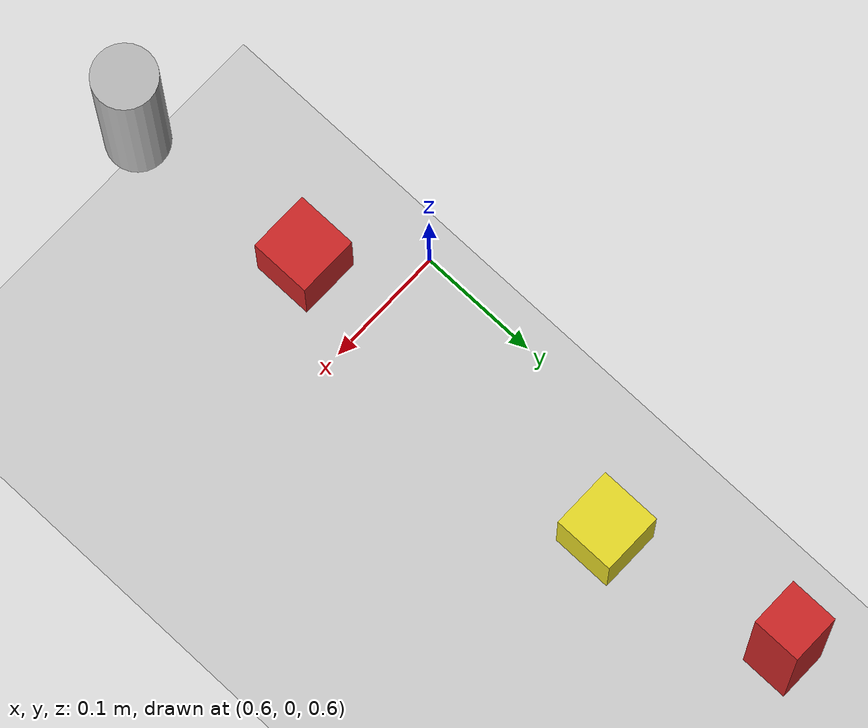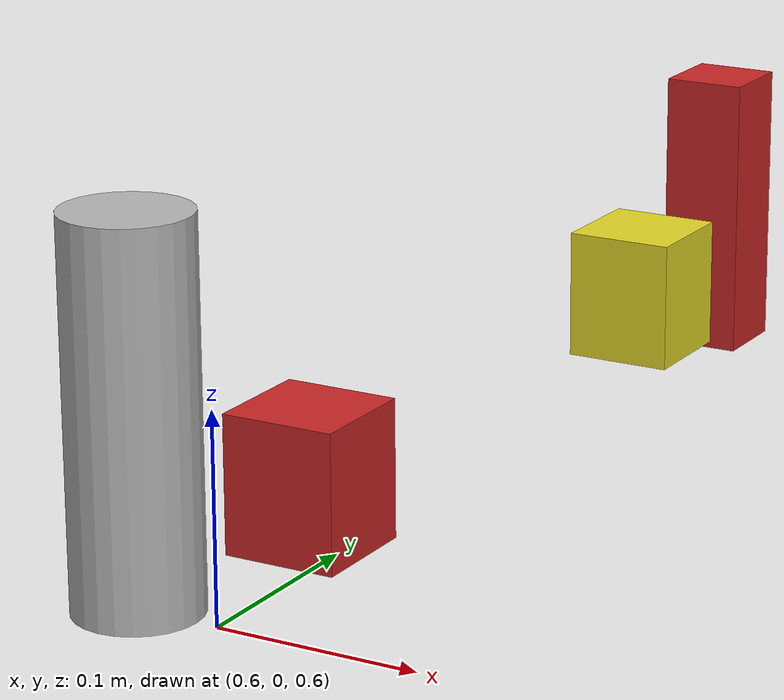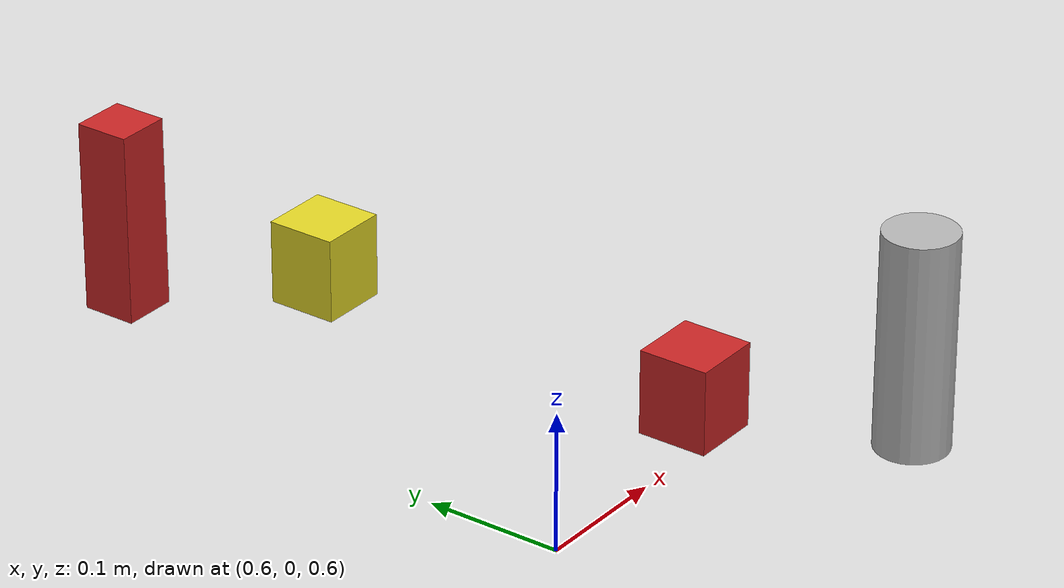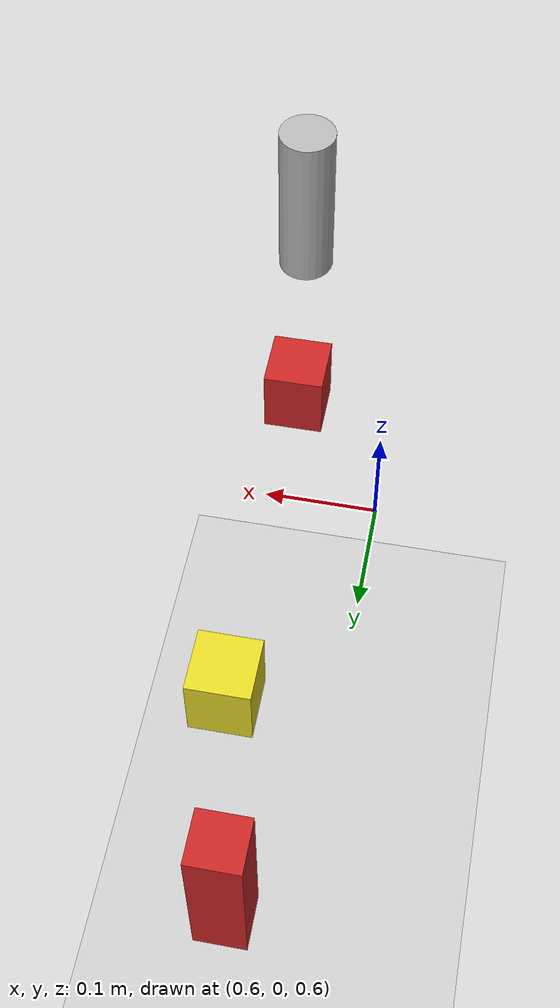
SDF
<sdf version="1.4">
 <world name="default">
  <physics type="ode">
   <gravity>0 0 -9.81</gravity>
   <ode>
    <solver><type>quick</type><iters>20</iters><sor>1.0</sor></solver>
    <constraints>
     <cfm>0.0</cfm>
     <erp>0.2</erp>
     <contact_max_correcting_vel>100.0</contact_max_correcting_vel>
     <contact_surface_layer>0.0</contact_surface_layer>
    </constraints>
   </ode>
   <real_time_update_rate>1000</real_time_update_rate>
   <max_step_size>0.001</max_step_size>
  </physics>
  <include><uri>model://sun</uri></include>
  <include><uri>model://ground_plane</uri></include>
  <include><uri>model://sprite</uri><name>sprite1</name><pose>0.7 -0.2 0.7 0 0 0</pose></include>
  <include><uri>model://red_cube</uri><name>red_cube1</name><pose>0.68 -0.05 0.7 0 0 0</pose></include>
  <include><uri>model://yellow_cube</uri><name>yellow_cube1</name><pose>0.68 0.25 0.7 0 0 0</pose></include>
  <include><uri>model://red_rectangle</uri><name>red_rectangle1</name><pose>0.65 0.4 0.7 0 0 0</pose></include>
 </world>
</sdf>

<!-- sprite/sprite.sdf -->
<sdf version="1.4">
  <model name="sprite">
    <static>0</static>
    <link name="sprite_link">
      <inertial>
        <mass>0.01</mass>
        <inertia>
          <ixx>0.000000</ixx>
          <ixy>0.000000</ixy>
          <ixz>0.000000</ixz>
          <iyy>0.000000</iyy>
          <iyz>0.000000</iyz>
          <izz>0.000000</izz>
        </inertia>
      </inertial>
      <collision name="collision">
        <pose>0 0 0.075 3.1416 0 0</pose>
        <geometry>
          <cylinder>
            <radius>0.025</radius>
            <length>0.15</length>
          </cylinder>
        </geometry>
        <surface>
          <bounce />
          <friction>
            <ode>
              <mu>100.0</mu>
              <mu2>100.0</mu2>
            </ode>
          </friction>
          <contact>
            <ode />
          </contact>
        </surface>
      </collision>
      <visual name="visual">
        <pose>0 0 0.075 3.1416 0 0</pose>
        <geometry>
          <cylinder>
            <radius>0.025</radius>
            <length>0.15</length>
          </cylinder>
        </geometry>
        <material>
          <script>
	      <uri>model://sprite/material/scripts</uri>
	      <uri>model://sprite/material/textures</uri>
              <name>Custom/sprite</name>
          </script>
        </material>
      </visual>
      <velocity_decay>
        <linear>0.000000</linear>
        <angular>0.000000</angular>
      </velocity_decay>
      <self_collide>0</self_collide>
      <kinematic>0</kinematic>
      <gravity>1</gravity>
    </link>
    <plugin name="p3d_base_controller" filename="libgazebo_ros_p3d.so">
        <!-- Link to which the plugin is attached -->
        <bodyName>sprite_link</bodyName>
        <!-- ROS topic name to publish the pose information -->
        <topicName>sprite</topicName>
        <!-- Frame name for the TF -->
        <frameName>world</frameName>
        <!-- Update rate in Hz -->
        <updateRate>30.0</updateRate>
        <!-- Gaussian noise magnitude -->
        <gaussianNoise>0.01</gaussianNoise>
    </plugin>
  </model>
</sdf>

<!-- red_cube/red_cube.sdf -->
<sdf version='1.4'>
  <model name="red_cube">
            <allow_auto_disable>0</allow_auto_disable>

      <static>0</static>
      <link name='red_cube_link'>
        <inertial>
          <mass>0.25</mass>
          <inertia>
            <ixx>0.000041667</ixx>
            <ixy>0.000000</ixy>
            <ixz>0.000000</ixz>
            <iyy>0.000041667</iyy>
            <iyz>0.000000</iyz>
            <izz>0.000041667</izz>
          </inertia>
        </inertial>
        <visual name='visual'>
          <geometry>
            <box>
              <size>0.050 0.050 0.060</size>
            </box>
          </geometry>
          <material>
            <script>
              <uri>file://media/materials/scripts/gazebo.material</uri>
              <name>Gazebo/Red</name>
            </script>
          </material>
        </visual>
        <collision name='collision'>
          <geometry>
            <box>
              <size>0.06 0.06 0.06</size>
            </box>
          </geometry>
          <surface>
            <friction>
              <ode>
                <mu>30.0</mu>
                <mu2>30.0</mu2>
              </ode>
            </friction>
            <contact>
              <ode>
                <kp>1000000.0</kp>
                <kd>100.0</kd>
                <max_vel>1.0</max_vel>
                <min_depth>0.0025</min_depth>
              </ode>
            </contact>
          </surface>
        </collision>
        <velocity_decay>
          <linear>0.000000</linear>
          <angular>0.000000</angular>
        </velocity_decay>
        <self_collide>0</self_collide>
        <kinematic>0</kinematic>
        <gravity>1</gravity>
      </link>
    <plugin name="p3d_base_controller" filename="libgazebo_ros_p3d.so">
        <!-- Link to which the plugin is attached -->
        <bodyName>red_cube_link</bodyName>
        <!-- ROS topic name to publish the pose information -->
        <topicName>red_cube</topicName>
        <!-- Frame name for the TF -->
        <frameName>world</frameName>
        <!-- Update rate in Hz -->
        <updateRate>30.0</updateRate>
        <!-- Gaussian noise magnitude -->
        <gaussianNoise>0.01</gaussianNoise>
    </plugin>
  </model>
</sdf>

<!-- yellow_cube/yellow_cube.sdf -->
<sdf version='1.4'>
  <model name="yellow_cube">
            <allow_auto_disable>0</allow_auto_disable>

      <static>0</static>
      <link name='yellow_cube_link'>
        <inertial>
          <mass>0.25</mass>
          <inertia>
            <ixx>0.000041667</ixx>
            <ixy>0.000000</ixy>
            <ixz>0.000000</ixz>
            <iyy>0.000041667</iyy>
            <iyz>0.000000</iyz>
            <izz>0.000041667</izz>
          </inertia>
        </inertial>
        <visual name='visual'>
          <geometry>
            <box>
              <size>0.050 0.050 0.060</size>
            </box>
          </geometry>
          <material>
            <script>
              <uri>file://media/materials/scripts/gazebo.material</uri>
              <name>Gazebo/Yellow</name>
            </script>
          </material>
        </visual>
        <collision name='collision'>
          <geometry>
            <box>
              <size>0.06 0.06 0.06</size>
            </box>
          </geometry>
          <surface>
            <friction>
              <ode>
                <mu>30.0</mu>
                <mu2>30.0</mu2>
              </ode>
            </friction>
            <contact>
              <ode>
                <kp>1000000.0</kp>
                <kd>100.0</kd>
                <max_vel>1.0</max_vel>
                <min_depth>0.0025</min_depth>
              </ode>
            </contact>
          </surface>
        </collision>
        <velocity_decay>
          <linear>0.000000</linear>
          <angular>0.000000</angular>
        </velocity_decay>
        <self_collide>0</self_collide>
        <kinematic>0</kinematic>
        <gravity>1</gravity>
      </link>
    <plugin name="p3d_base_controller" filename="libgazebo_ros_p3d.so">
        <!-- Link to which the plugin is attached -->
        <bodyName>yellow_cube_link</bodyName>
        <!-- ROS topic name to publish the pose information -->
        <topicName>yellow_cube</topicName>
        <!-- Frame name for the TF -->
        <frameName>world</frameName>
        <!-- Update rate in Hz -->
        <updateRate>30.0</updateRate>
        <!-- Gaussian noise magnitude -->
        <gaussianNoise>0.01</gaussianNoise>
    </plugin>
  </model>
</sdf>

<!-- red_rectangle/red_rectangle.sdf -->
<sdf version='1.4'>
  <model name="red_rectangle">
      <static>0</static>
      <link name='red_rectangle_link'>
        <inertial>
          <mass>0.25</mass>
          <inertia>
            <ixx>0.000041667</ixx>
            <ixy>0.000000</ixy>
            <ixz>0.000000</ixz>
            <iyy>0.000041667</iyy>
            <iyz>0.000000</iyz>
            <izz>0.000041667</izz>
          </inertia>
        </inertial>
        <visual name='visual'>
          <geometry>
            <box>
              <size>0.040 0.040 0.140</size>
            </box>
          </geometry>
          <material>
            <script>
              <uri>file://media/materials/scripts/gazebo.material</uri>
              <name>Gazebo/Red</name>
            </script>
          </material>
        </visual>
        <collision name='collision'>
          <geometry>
            <box>
              <size>0.04 0.04 0.140</size>
            </box>
          </geometry>
          <surface>
            <friction>
              <ode>
                <mu>60.0</mu>
                <mu2>60.0</mu2>
              </ode>
            </friction>
            <contact>
              <ode>
                <kp>1000000.0</kp>
                <kd>100.0</kd>
                <max_vel>1.0</max_vel>
                <min_depth>0.0025</min_depth>
              </ode>
            </contact>
          </surface>
        </collision>
        <velocity_decay>
          <linear>0.000000</linear>
          <angular>0.000000</angular>
        </velocity_decay>
        <self_collide>0</self_collide>
        <kinematic>0</kinematic>
        <gravity>1</gravity>
      </link>
    <plugin name="p3d_base_controller" filename="libgazebo_ros_p3d.so">
        <!-- Link to which the plugin is attached -->
        <bodyName>red_rectangle_link</bodyName>
        <!-- ROS topic name to publish the pose information -->
        <topicName>red_rectangle</topicName>
        <!-- Frame name for the TF -->
        <frameName>world</frameName>
        <!-- Update rate in Hz -->
        <updateRate>30.0</updateRate>
        <!-- Gaussian noise magnitude -->
        <gaussianNoise>0.01</gaussianNoise>
    </plugin>
  </model>
</sdf>
